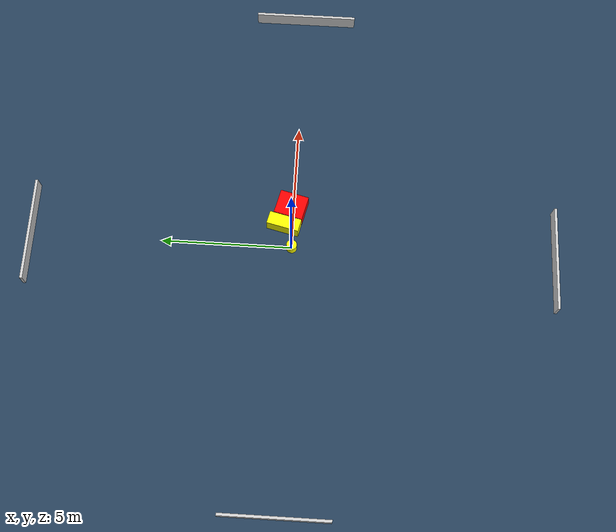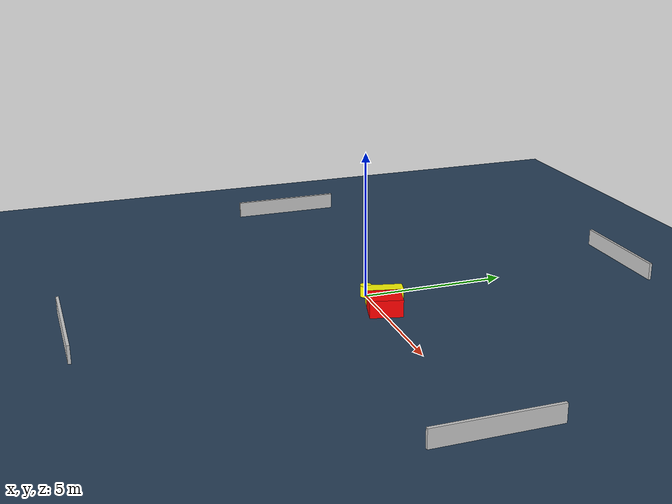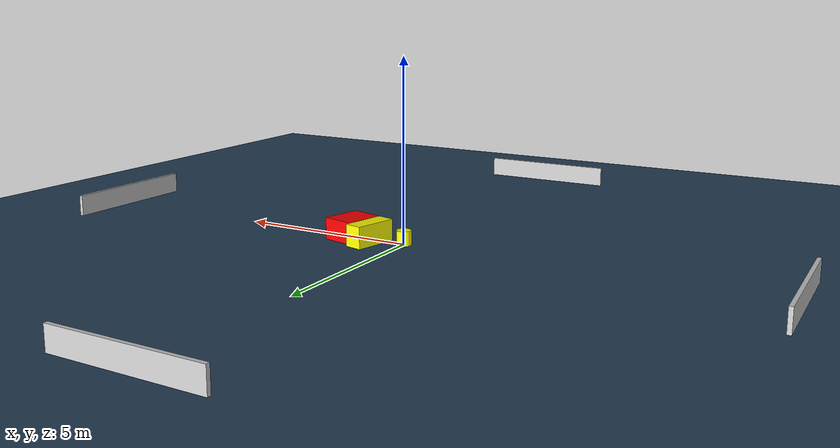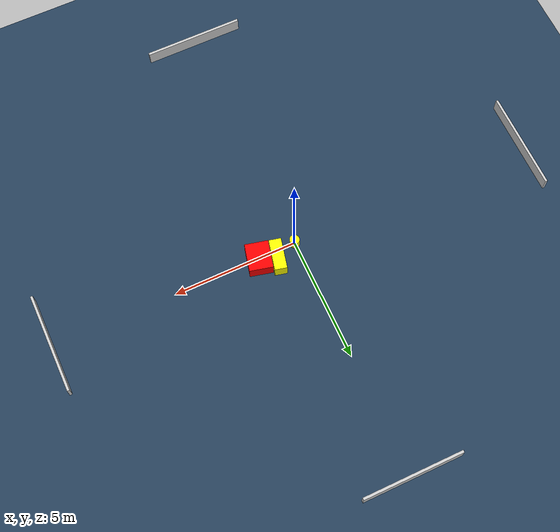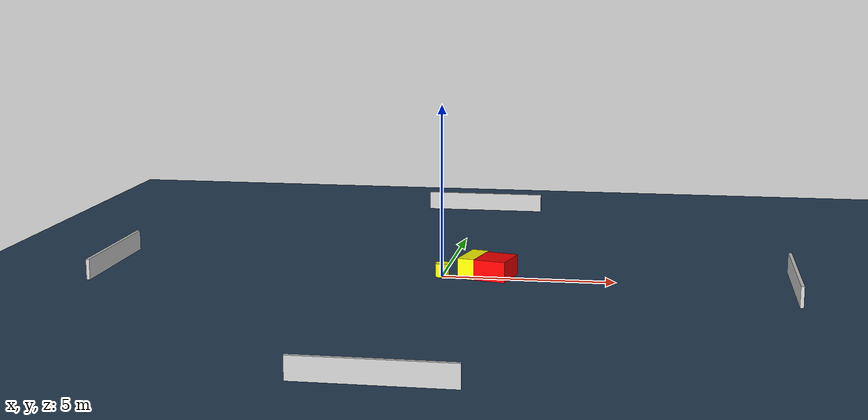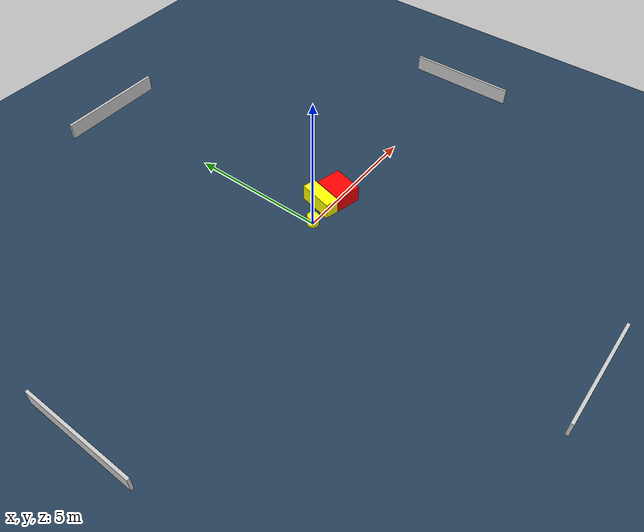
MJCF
<?xml version="1.0" ?>
<mujoco model="generated_environment">
  <option timestep="0.01" integrator="RK4" cone="elliptic"/>
  <default>
    <geom density="1"/>
  </default>
  <asset>
    <texture builtin="gradient" height="3072" name="skybox" rgb1="0.3 0.5 0.7" rgb2="0 0 0" type="skybox" width="512"/>
    <texture builtin="checker" height="300" name="groundplane" rgb1="0.2 0.3 0.4" rgb2="0.1 0.2 0.3" type="2d" width="300"/>
    <material name="groundplane" reflectance="0.2" texrepeat="5 5" texture="groundplane"/>
  </asset>
  <worldbody>
    <light dir="0 0 -1" directional="true" pos="0 0 1.5"/>
    <geom condim="3" friction="0.5 0.005 0.001" material="groundplane" name="floor" pos="0 0 0" size="0 0 0.05" type="plane"/>
    <body name="walls">
      <geom name="wall_1" condim="4" pos="-10.0 0.0 0.3" rgba="0.800000011920929 0.800000011920929 0.800000011920929 1.0" size="0.05 2.0 0.3" type="box"/>
      <geom name="wall_2" condim="4" pos="10.0 0.0 0.3" rgba="0.800000011920929 0.800000011920929 0.800000011920929 1.0" size="0.05 2.0 0.3" type="box"/>
      <geom name="wall_3" condim="4" pos="0.0 -10.0 0.3" rgba="0.800000011920929 0.800000011920929 0.800000011920929 1.0" size="2.0 0.05 0.3" type="box"/>
      <geom name="wall_4" condim="4" pos="0.0 10.0 0.3" rgba="0.800000011920929 0.800000011920929 0.800000011920929 1.0" size="2.0 0.05 0.3" type="box"/>
    </body>
    <body name="robot">
      <joint name="joint_x" type="slide" pos="0 0 0" axis="1 0 0"/>
      <joint name="joint_y" type="slide" pos="0 0 0" axis="0 1 0"/>
      <geom name="robot" type="cylinder" pos="0.0 0.0 0.2" size="0.2 0.2 0.0" mass="5.0" friction="1.0 0.005 0.0001" condim="4" rgba="1.0 1.0 0.0 1.0"/>
    </body>
    <body name="obstacle_1_movable">
      <geom name="obstacle_1_movable" condim="4" pos="0.8635404354443642 0.34324296418566796 0.3" euler="0 0 346.7751141113658" friction="0.0 0.005 0.001" rgba="1.0 1.0 0.0 1.0" size="0.2463558513602076 0.6222484207072931 0.3" type="box" mass="0.1"/>
      <joint type="free"/>
    </body>
    <body name="obstacle_2_static">
      <geom name="obstacle_2_static" condim="4" pos="1.5553698705735364 0.10419229748172659 0.3" euler="0 0 166.34019702772054" friction="0.0 0.005 0.001" rgba="1.0 0.0 0.0 1.0" size="0.46771842235131467 0.5564545870827804 0.3" type="box"/>
    </body>
  </worldbody>
  <actuator>
    <motor name="actuator_x" joint="joint_x" gear="1" ctrlrange="-1 1"/>
    <motor name="actuator_y" joint="joint_y" gear="1" ctrlrange="-1 1"/>
  </actuator>
</mujoco>
